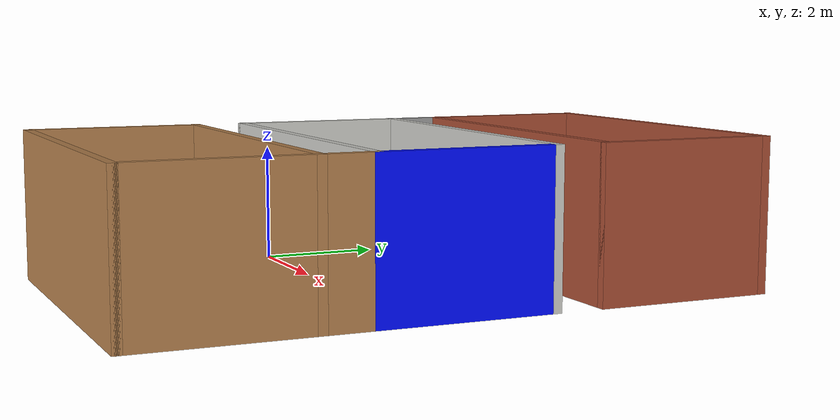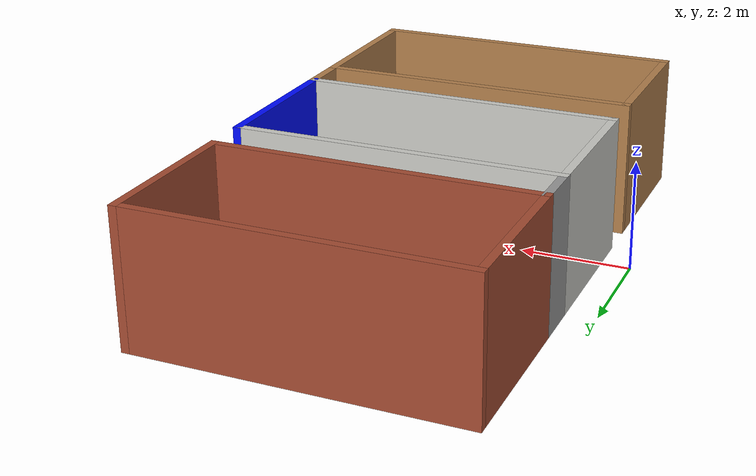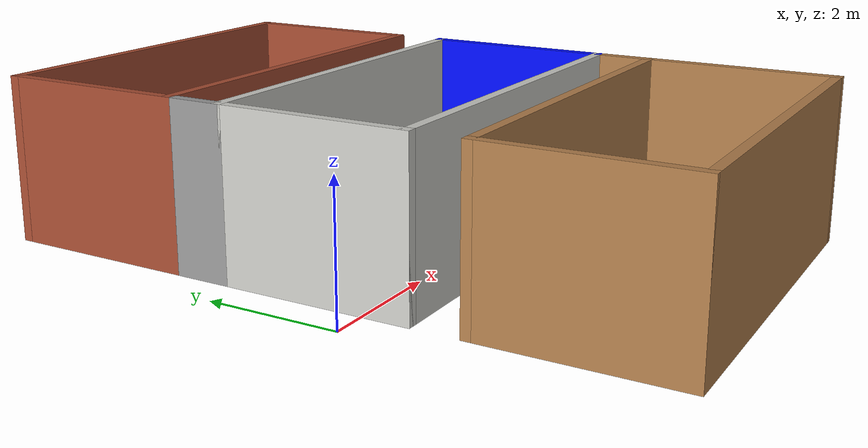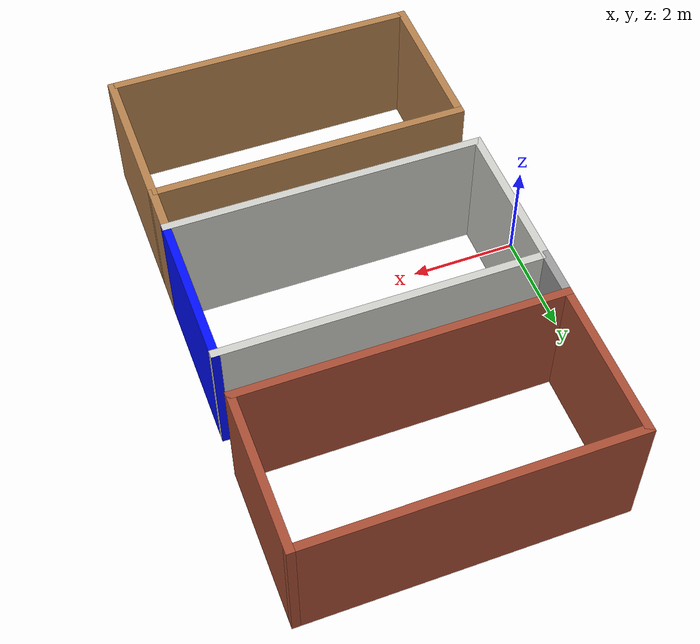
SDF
<?xml version='1.0'?>
<sdf version='1.6'>
  <model name='chianghuang'>
    <pose frame=''>3.26224 0.785241 0 0 -0 0</pose>
    <link name='Wall_66'>
      <collision name='Wall_66_Collision'>
        <geometry>
          <box>
            <size>6 0.15 2.5</size>
          </box>
        </geometry>
        <pose frame=''>0 0 1.25 0 -0 0</pose>
      </collision>
      <visual name='Wall_66_Visual'>
        <pose frame=''>0 0 1.25 0 -0 0</pose>
        <geometry>
          <box>
            <size>6 0.15 2.5</size>
          </box>
        </geometry>
        <material>
          <script>
            <uri>file://media/materials/scripts/gazebo.material</uri>
            <name>Gazebo/CeilingTiled</name>
          </script>
          <ambient>1 1 1 1</ambient>
        </material>
        <meta>
          <layer>0</layer>
        </meta>
      </visual>
      <pose frame=''>0.262243 -1.425 0 0 -0 0</pose>
    </link>
    <link name='Wall_67'>
      <collision name='Wall_67_Collision'>
        <geometry>
          <box>
            <size>3 0.15 2.5</size>
          </box>
        </geometry>
        <pose frame=''>0 0 1.25 0 -0 0</pose>
      </collision>
      <visual name='Wall_67_Visual'>
        <pose frame=''>0 0 1.25 0 -0 0</pose>
        <geometry>
          <box>
            <size>3 0.15 2.5</size>
          </box>
        </geometry>
        <material>
          <script>
            <uri>file://media/materials/scripts/gazebo.material</uri>
            <name>Gazebo/Grey</name>
          </script>
          <ambient>0 0.0470588 1 1</ambient>
        </material>
        <meta>
          <layer>0</layer>
        </meta>
      </visual>
      <pose frame=''>3.18724 0 0 0 -0 1.5708</pose>
    </link>
    <link name='Wall_68'>
      <collision name='Wall_68_Collision'>
        <geometry>
          <box>
            <size>6 0.15 2.5</size>
          </box>
        </geometry>
        <pose frame=''>0 0 1.25 0 -0 0</pose>
      </collision>
      <visual name='Wall_68_Visual'>
        <pose frame=''>0 0 1.25 0 -0 0</pose>
        <geometry>
          <box>
            <size>6 0.15 2.5</size>
          </box>
        </geometry>
        <material>
          <script>
            <uri>file://media/materials/scripts/gazebo.material</uri>
            <name>Gazebo/CeilingTiled</name>
          </script>
          <ambient>1 1 1 1</ambient>
        </material>
        <meta>
          <layer>0</layer>
        </meta>
      </visual>
      <pose frame=''>0.262243 1.425 0 0 -0 3.14159</pose>
    </link>
    <link name='Wall_69'>
      <collision name='Wall_69_Collision'>
        <geometry>
          <box>
            <size>3 0.15 2.5</size>
          </box>
        </geometry>
        <pose frame=''>0 0 1.25 0 -0 0</pose>
      </collision>
      <visual name='Wall_69_Visual'>
        <pose frame=''>0 0 1.25 0 -0 0</pose>
        <geometry>
          <box>
            <size>3 0.15 2.5</size>
          </box>
        </geometry>
        <material>
          <script>
            <uri>file://media/materials/scripts/gazebo.material</uri>
            <name>Gazebo/CeilingTiled</name>
          </script>
          <ambient>0.8 0 0 1</ambient>
        </material>
        <meta>
          <layer>0</layer>
        </meta>
      </visual>
      <pose frame=''>-2.66276 0 0 0 -0 -1.5708</pose>
    </link>
    <link name='Wall_71'>
      <collision name='Wall_71_Collision'>
        <geometry>
          <box>
            <size>1 0.15 2.5</size>
          </box>
        </geometry>
        <pose frame=''>0 0 1.25 0 -0 0</pose>
      </collision>
      <visual name='Wall_71_Visual'>
        <pose frame=''>0 0 1.25 0 -0 0</pose>
        <geometry>
          <box>
            <size>1 0.15 2.5</size>
          </box>
        </geometry>
        <material>
          <script>
            <uri>file://media/materials/scripts/gazebo.material</uri>
            <name>Gazebo/Grey</name>
          </script>
          <ambient>1 1 1 1</ambient>
        </material>
        <meta>
          <layer>0</layer>
        </meta>
      </visual>
      <pose frame=''>-2.66276 1.85 0 0 -0 1.5708</pose>
    </link>
    <link name='Wall_72'>
      <collision name='Wall_72_Collision'>
        <geometry>
          <box>
            <size>6 0.15 2.5</size>
          </box>
        </geometry>
        <pose frame=''>0 0 1.25 0 -0 0</pose>
      </collision>
      <visual name='Wall_72_Visual'>
        <pose frame=''>0 0 1.25 0 -0 0</pose>
        <geometry>
          <box>
            <size>6 0.15 2.5</size>
          </box>
        </geometry>
        <material>
          <script>
            <uri>file://media/materials/scripts/gazebo.material</uri>
            <name>Gazebo/Bricks</name>
          </script>
          <ambient>0.643137 0 0 1</ambient>
        </material>
        <meta>
          <layer>0</layer>
        </meta>
      </visual>
      <pose frame=''>0.262243 2.275 0 0 -0 0</pose>
    </link>
    <link name='Wall_75'>
      <collision name='Wall_75_Collision'>
        <geometry>
          <box>
            <size>3 0.15 2.5</size>
          </box>
        </geometry>
        <pose frame=''>0 0 1.25 0 -0 0</pose>
      </collision>
      <visual name='Wall_75_Visual'>
        <pose frame=''>0 0 1.25 0 -0 0</pose>
        <geometry>
          <box>
            <size>3 0.15 2.5</size>
          </box>
        </geometry>
        <material>
          <script>
            <uri>file://media/materials/scripts/gazebo.material</uri>
            <name>Gazebo/Bricks</name>
          </script>
          <ambient>1 1 1 1</ambient>
        </material>
        <meta>
          <layer>0</layer>
        </meta>
      </visual>
      <pose frame=''>3.18724 3.7 0 0 -0 1.5708</pose>
    </link>
    <link name='Wall_76'>
      <collision name='Wall_76_Collision'>
        <geometry>
          <box>
            <size>6 0.15 2.5</size>
          </box>
        </geometry>
        <pose frame=''>0 0 1.25 0 -0 0</pose>
      </collision>
      <visual name='Wall_76_Visual'>
        <pose frame=''>0 0 1.25 0 -0 0</pose>
        <geometry>
          <box>
            <size>6 0.15 2.5</size>
          </box>
        </geometry>
        <material>
          <script>
            <uri>file://media/materials/scripts/gazebo.material</uri>
            <name>Gazebo/Bricks</name>
          </script>
          <ambient>0 0.0470588 1 1</ambient>
        </material>
        <meta>
          <layer>0</layer>
        </meta>
      </visual>
      <pose frame=''>0.262243 5.125 0 0 -0 3.14159</pose>
    </link>
    <link name='Wall_77'>
      <collision name='Wall_77_Collision'>
        <geometry>
          <box>
            <size>3 0.15 2.5</size>
          </box>
        </geometry>
        <pose frame=''>0 0 1.25 0 -0 0</pose>
      </collision>
      <visual name='Wall_77_Visual'>
        <pose frame=''>0 0 1.25 0 -0 0</pose>
        <geometry>
          <box>
            <size>3 0.15 2.5</size>
          </box>
        </geometry>
        <material>
          <script>
            <uri>file://media/materials/scripts/gazebo.material</uri>
            <name>Gazebo/Bricks</name>
          </script>
          <ambient>1 1 1 1</ambient>
        </material>
        <meta>
          <layer>0</layer>
        </meta>
      </visual>
      <pose frame=''>-2.66276 3.7 0 0 -0 -1.5708</pose>
    </link>
    <link name='Wall_80'>
      <collision name='Wall_80_Collision'>
        <geometry>
          <box>
            <size>1 0.15 2.5</size>
          </box>
        </geometry>
        <pose frame=''>0 0 1.25 0 -0 0</pose>
      </collision>
      <visual name='Wall_80_Visual'>
        <pose frame=''>0 0 1.25 0 -0 0</pose>
        <geometry>
          <box>
            <size>1 0.15 2.5</size>
          </box>
        </geometry>
        <material>
          <script>
            <uri>file://media/materials/scripts/gazebo.material</uri>
            <name>Gazebo/Wood</name>
          </script>
          <ambient>1 1 1 1</ambient>
        </material>
        <meta>
          <layer>0</layer>
        </meta>
      </visual>
      <pose frame=''>3.18724 -1.85 0 0 -0 -1.5708</pose>
    </link>
    <link name='Wall_81'>
      <collision name='Wall_81_Collision'>
        <geometry>
          <box>
            <size>6 0.15 2.5</size>
          </box>
        </geometry>
        <pose frame=''>0 0 1.25 0 -0 0</pose>
      </collision>
      <visual name='Wall_81_Visual'>
        <pose frame=''>0 0 1.25 0 -0 0</pose>
        <geometry>
          <box>
            <size>6 0.15 2.5</size>
          </box>
        </geometry>
        <material>
          <script>
            <uri>file://media/materials/scripts/gazebo.material</uri>
            <name>Gazebo/Wood</name>
          </script>
          <ambient>1 1 1 1</ambient>
        </material>
        <meta>
          <layer>0</layer>
        </meta>
      </visual>
      <pose frame=''>0.262243 -2.275 0 0 -0 3.14159</pose>
    </link>
    <link name='Wall_82'>
      <collision name='Wall_82_Collision'>
        <geometry>
          <box>
            <size>3 0.15 2.5</size>
          </box>
        </geometry>
        <pose frame=''>0 0 1.25 0 -0 0</pose>
      </collision>
      <visual name='Wall_82_Visual'>
        <pose frame=''>0 0 1.25 0 -0 0</pose>
        <geometry>
          <box>
            <size>3 0.15 2.5</size>
          </box>
        </geometry>
        <material>
          <script>
            <uri>file://media/materials/scripts/gazebo.material</uri>
            <name>Gazebo/Wood</name>
          </script>
          <ambient>1 1 1 1</ambient>
        </material>
        <meta>
          <layer>0</layer>
        </meta>
      </visual>
      <pose frame=''>-2.66276 -3.7 0 0 -0 -1.5708</pose>
    </link>
    <link name='Wall_83'>
      <collision name='Wall_83_Collision'>
        <geometry>
          <box>
            <size>6 0.15 2.5</size>
          </box>
        </geometry>
        <pose frame=''>0 0 1.25 0 -0 0</pose>
      </collision>
      <visual name='Wall_83_Visual'>
        <pose frame=''>0 0 1.25 0 -0 0</pose>
        <geometry>
          <box>
            <size>6 0.15 2.5</size>
          </box>
        </geometry>
        <material>
          <script>
            <uri>file://media/materials/scripts/gazebo.material</uri>
            <name>Gazebo/Wood</name>
          </script>
          <ambient>0.643137 0 0 1</ambient>
        </material>
        <meta>
          <layer>0</layer>
        </meta>
      </visual>
      <pose frame=''>0.262243 -5.125 0 0 -0 0</pose>
    </link>
    <link name='Wall_84'>
      <collision name='Wall_84_Collision'>
        <geometry>
          <box>
            <size>3 0.15 2.5</size>
          </box>
        </geometry>
        <pose frame=''>0 0 1.25 0 -0 0</pose>
      </collision>
      <visual name='Wall_84_Visual'>
        <pose frame=''>0 0 1.25 0 -0 0</pose>
        <geometry>
          <box>
            <size>3 0.15 2.5</size>
          </box>
        </geometry>
        <material>
          <script>
            <uri>file://media/materials/scripts/gazebo.material</uri>
            <name>Gazebo/Wood</name>
          </script>
          <ambient>1 1 1 1</ambient>
        </material>
        <meta>
          <layer>0</layer>
        </meta>
      </visual>
      <pose frame=''>3.18724 -3.7 0 0 -0 1.5708</pose>
    </link>
    <static>1</static>
  </model>
</sdf>
